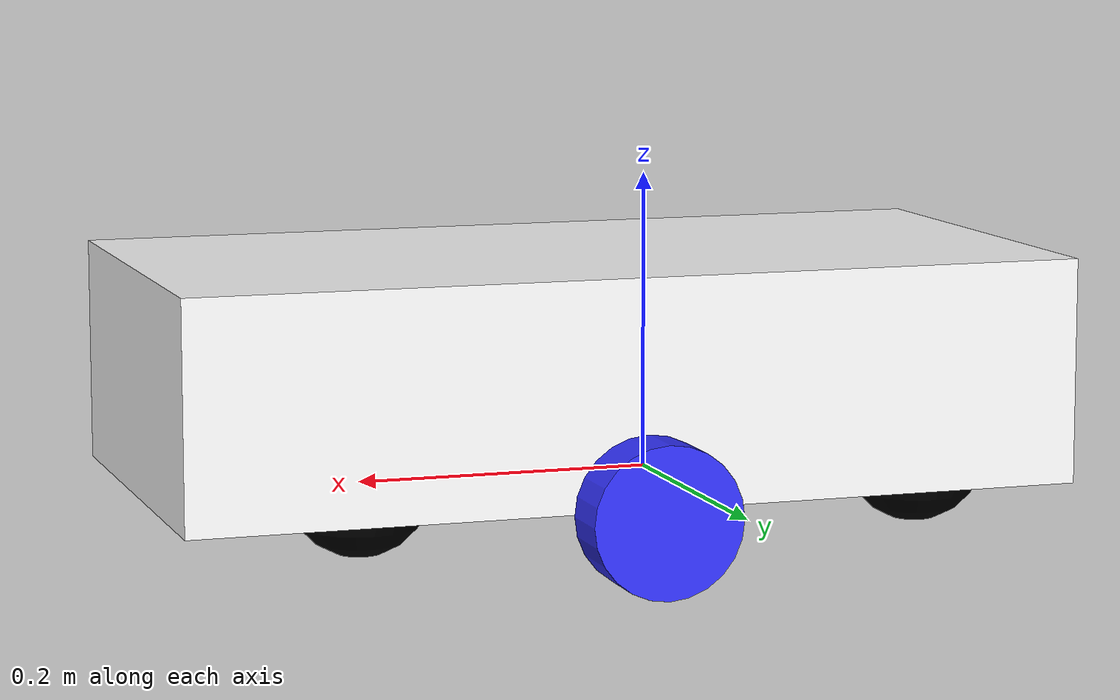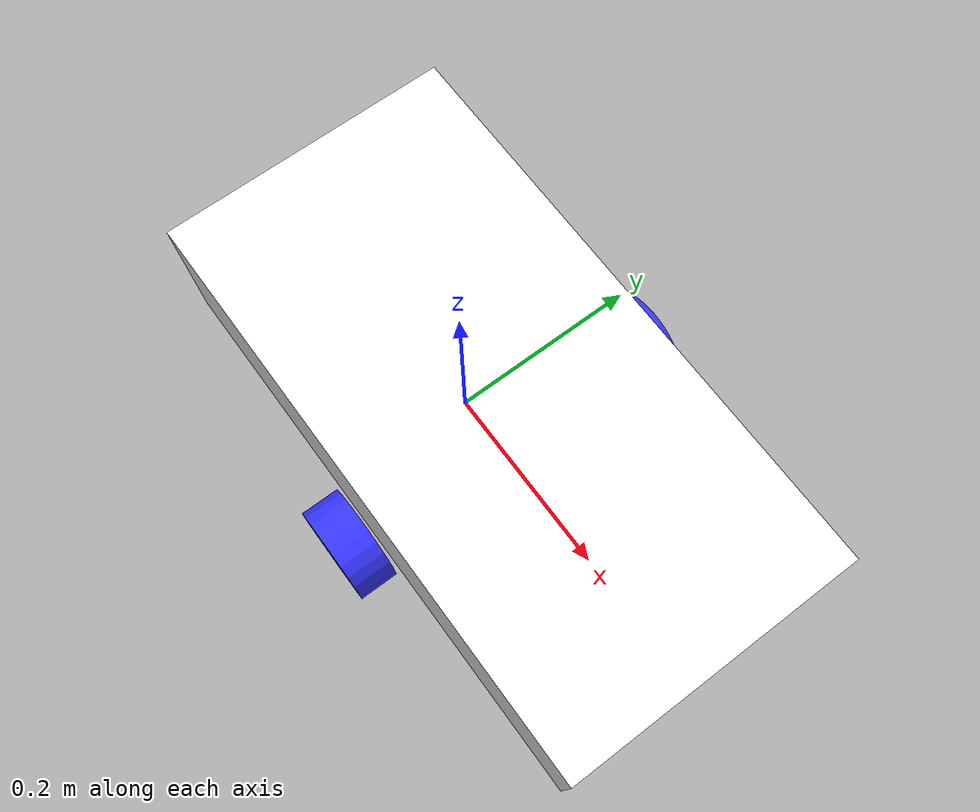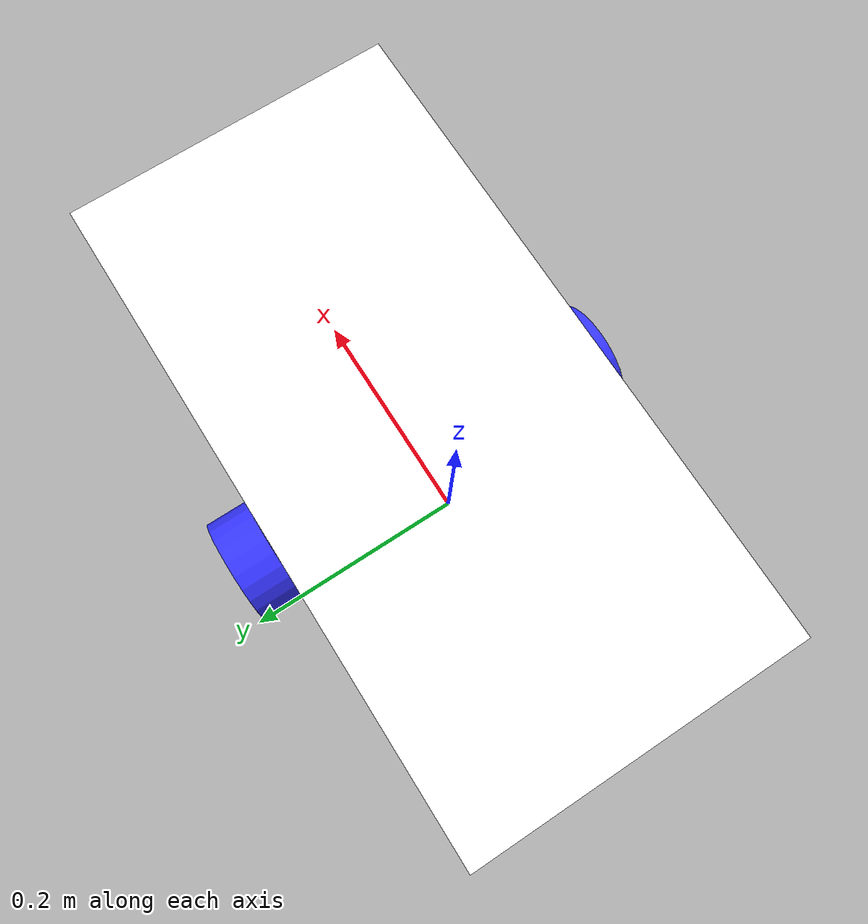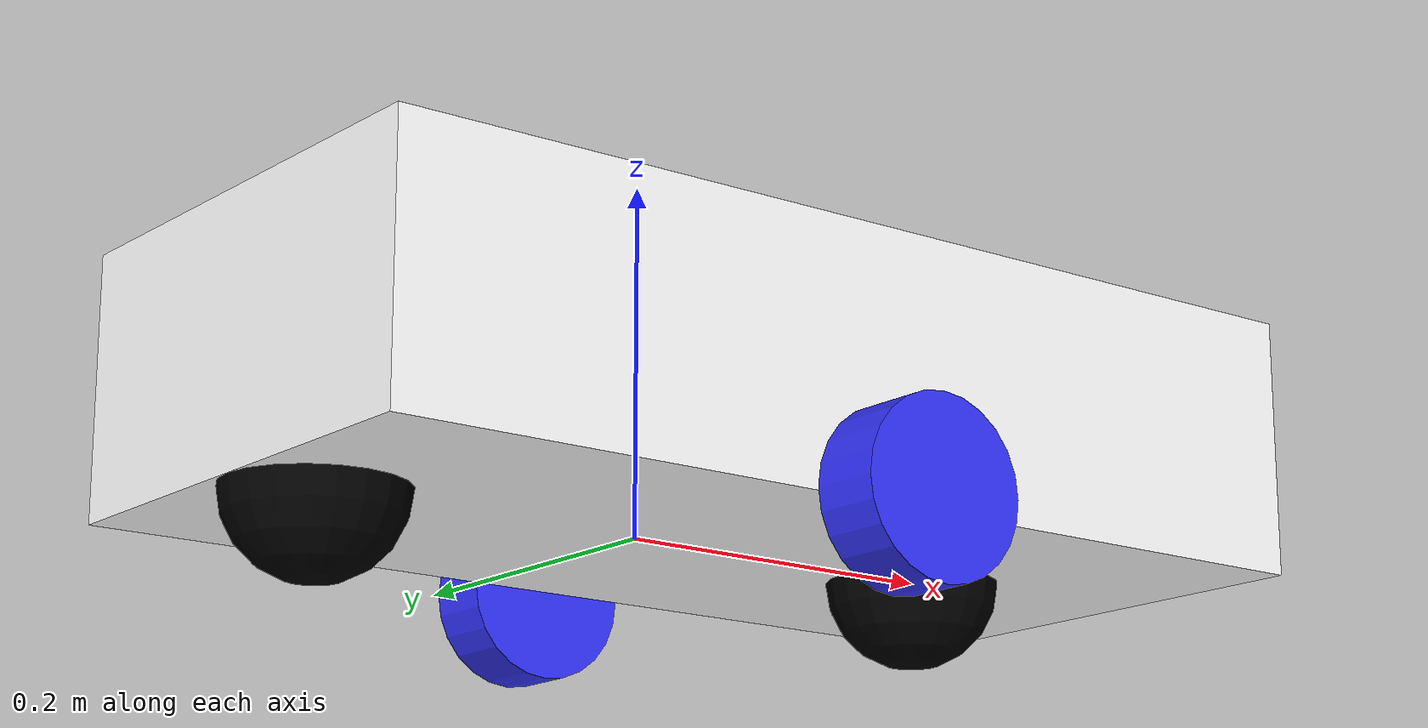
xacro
<?xml version="1.0"?>
<!-- source: https://articulatedrobotics.xyz/mobile-robot-2-concept-urdf/ -->

<robot xmlns:xacro="http://www.ros.org/wiki/xacro" >

    <xacro:include filename="inertial_macros.xacro"/>

    <material name="white">
        <color rgba="1 1 1 1" />
    </material>

    <material name="orange">
        <color rgba="1 0.3 0.1 1"/>
    </material>

    <material name="blue">
        <color rgba="0.2 0.2 1 1"/>
    </material>

    <material name="black">
        <color rgba="0 0 0 1"/>
    </material>

    <material name="red">
        <color rgba="1 0 0 1"/>
    </material>

    <!-- BASE LINK -->

    <link name="base_link">

    </link>

    <!-- CHASSIS LINK -->

    <joint name="chassis_joint" type="fixed">
        <parent link="base_link"/>
        <child link="chassis"/>
        <origin xyz="-0.1 0 0"/>
    </joint>

    <link name="chassis">
        <visual>
            <origin xyz="0.15 0 0.075"/>
            <geometry>
             <!-- below size dimensions are in meters -->
                <box size="0.6 0.3 0.15"/>
            </geometry>
            <material name="white"/>
        </visual>
        <collision>
            <origin xyz="0.15 0 0.075"/>
            <geometry>
                <box size="0.6 0.3 0.15"/>
            </geometry>
        </collision>
        <xacro:inertial_box mass="0.5" x="0.6" y="0.3" z="0.15"> <!-- note: mass is in kilograms-->
            <origin xyz="0.15 0 0.075" rpy="0 0 0"/>
        </xacro:inertial_box>
    </link>

    <gazebo reference="chassis">
        <material>Gazebo/White</material>
    </gazebo>

    <!-- LEFT WHEEL LINK -->
    <!-- continuous joints, as wheels should be able to rotate continuously-->

    <joint name="left_wheel_joint" type="continuous">
        <parent link="chassis"/> <!-- making the parent chassis to center the wheel-->
        <child link="left_wheel"/>
         <!-- Rotating the cylinder so that the cylinder is oriented along the y - axis (left to right)
        In ROS the default is oriented along the z axis. Need to do a quarter turn (-pi/2 radians) -->
        <origin xyz="0.15 0.175 0" rpy="-${pi/2} 0 0" />
        <!-- Here we have -pi/2 roll (rotation front to back), and zero pitch (side to side rotation), and zero yaw (vertical rotation)-->
        <axis xyz="0 0 1"/>
        <!--Wheel should point outwards, zero in x and y, and 1 in z-->
    </joint>

    <link name="left_wheel">
        <visual>
            <geometry>
                <cylinder radius="0.05" length="0.04"/>
            </geometry>
            <material name="blue"/>
        </visual>
        <collision>
            <geometry>
                <cylinder radius="0.05" length="0.04"/>
            </geometry>
        </collision>
        <xacro:inertial_cylinder mass="0.1" length="0.04" radius="0.05">
            <origin xyz="0 0 0" rpy="0 0 0"/>
        </xacro:inertial_cylinder>
    </link>

    <gazebo reference="left_wheel">
        <material>Gazebo/Blue</material>
    </gazebo>

    <!-- RIGHT WHEEL LINK -->

    <joint name="right_wheel_joint" type="continuous">
        <parent link="chassis"/> <!-- making the parent chassis to center the wheel-->
        <child link="right_wheel"/>
        <origin xyz="0.15 -0.175 0" rpy="${pi/2} 0 0" />
        <axis xyz="0 0 -1"/>
    </joint>

    <link name="right_wheel">
        <visual>
            <geometry>
                <cylinder radius="0.05" length="0.04"/>
            </geometry>
            <material name="blue"/>
        </visual>
        <collision>
            <geometry>
                <cylinder radius="0.05" length="0.04"/>
            </geometry>
        </collision>
        <xacro:inertial_cylinder mass="0.1" length="0.04" radius="0.05">
            <origin xyz="0 0 0" rpy="0 0 0"/>
        </xacro:inertial_cylinder>
    </link>

    <gazebo reference="right_wheel">
        <material>Gazebo/Blue</material>
    </gazebo>

    <!-- CASTER WHEEL LINK -->

    <joint name="caster_wheel_joint" type="fixed">
        <parent link="chassis"/>
        <child link="caster_wheel"/>
        <origin xyz="0.3 0 0"/>
    </joint>

    <link name="caster_wheel">
        <visual>
            <geometry>
                <sphere radius="0.05"/>
            </geometry>
            <material name="black"/>
        </visual>
        <collision>
            <geometry>
                <sphere radius="0.05"/>
            </geometry>
        </collision>
        <xacro:inertial_sphere mass="0.1" radius="0.05">
            <origin xyz="0 0 0" rpy="0 0 0"/>
        </xacro:inertial_sphere>
    </link>

    <gazebo reference="caster_wheel">
        <material>Gazebo/Black</material>
        <mu1 value="0.001"/>
        <mu2 value="0.001"/>
    </gazebo>

     <!-- CASTER WHEEL LINK 2 -->

    <joint name="caster_wheel_joint_2" type="fixed">
        <parent link="chassis"/>
        <child link="caster_wheel_2"/>
        <origin xyz="-0.1 0 0"/>
    </joint>

    <link name="caster_wheel_2">
        <visual>
            <geometry>
                <sphere radius="0.05"/>
            </geometry>
            <material name="black"/>
        </visual>
        <collision>
            <geometry>
                <sphere radius="0.05"/>
            </geometry>
        </collision>
        <xacro:inertial_sphere mass="0.1" radius="0.05">
            <origin xyz="0 0 0" rpy="0 0 0"/>
        </xacro:inertial_sphere>
    </link>

    <gazebo reference="caster_wheel_2">
        <material>Gazebo/Black</material>
        <mu1 value="0.001"/>
        <mu2 value="0.001"/>
    </gazebo>

</robot>

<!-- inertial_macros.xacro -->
<!-- Source: https://github.com/joshnewans/articubot_one/blob/d5aa5e9bc9039073c0d8fd7fe426e170be79c087/description/inertial_macros.xacro-->
<robot xmlns:xacro="http://www.ros.org/wiki/xacro" >

    <!-- Specify some standard inertial calculations https://en.wikipedia.org/wiki/List_of_moments_of_inertia -->
    <!-- These make use of xacro's mathematical functionality  -->

    <xacro:macro name="inertial_sphere" params="mass radius *origin">
        <inertial>
            <xacro:insert_block name="origin"/>
            <mass value="${mass}" />
            <inertia ixx="${(2/5) * mass * (radius*radius)}" ixy="0.0" ixz="0.0"
                    iyy="${(2/5) * mass * (radius*radius)}" iyz="0.0"
                    izz="${(2/5) * mass * (radius*radius)}" />
        </inertial>
    </xacro:macro>

    <xacro:macro name="inertial_box" params="mass x y z *origin">
        <inertial>
            <xacro:insert_block name="origin"/>
            <mass value="${mass}" />
            <inertia ixx="${(1/12) * mass * (y*y+z*z)}" ixy="0.0" ixz="0.0"
                    iyy="${(1/12) * mass * (x*x+z*z)}" iyz="0.0"
                    izz="${(1/12) * mass * (x*x+y*y)}" />
        </inertial>
    </xacro:macro>

    <xacro:macro name="inertial_cylinder" params="mass length radius *origin">
        <inertial>
            <xacro:insert_block name="origin"/>
            <mass value="${mass}" />
            <inertia ixx="${(1/12) * mass * (3*radius*radius + length*length)}" ixy="0.0" ixz="0.0"
                    iyy="${(1/12) * mass * (3*radius*radius + length*length)}" iyz="0.0"
                    izz="${(1/2) * mass * (radius*radius)}" />
        </inertial>
    </xacro:macro>

</robot>
